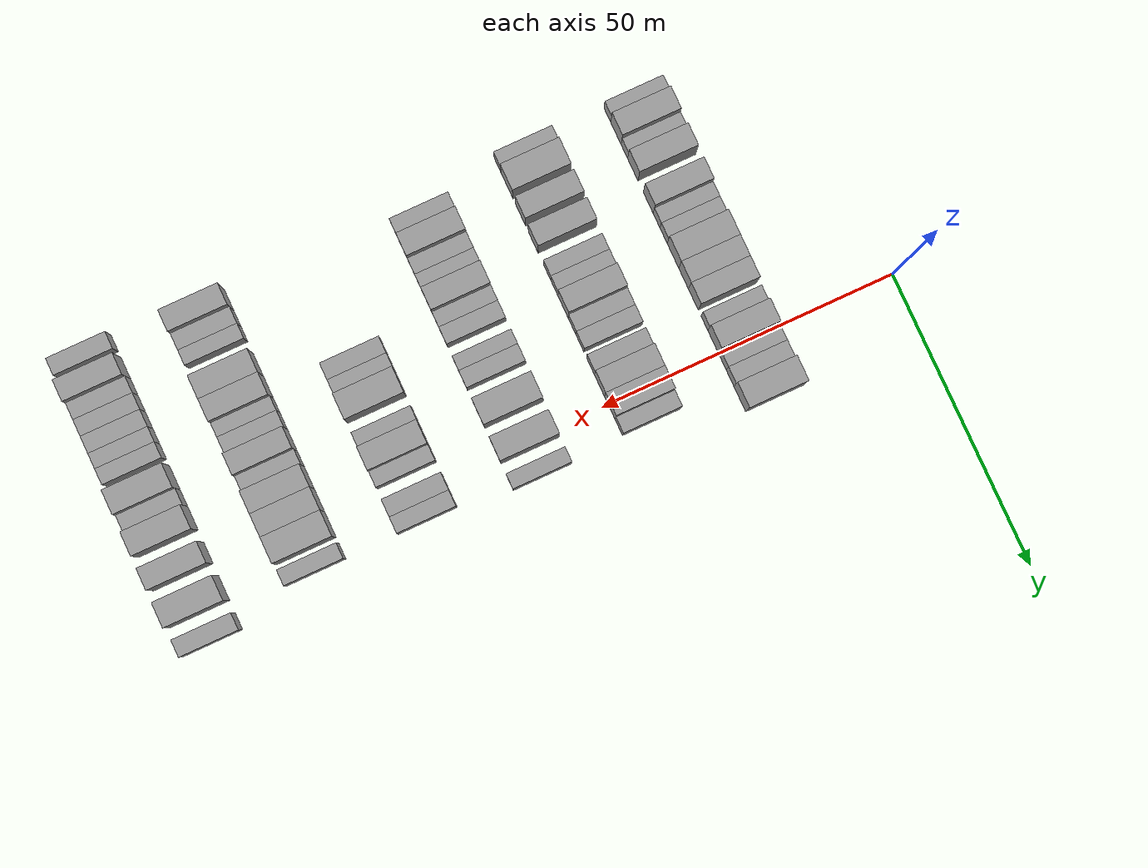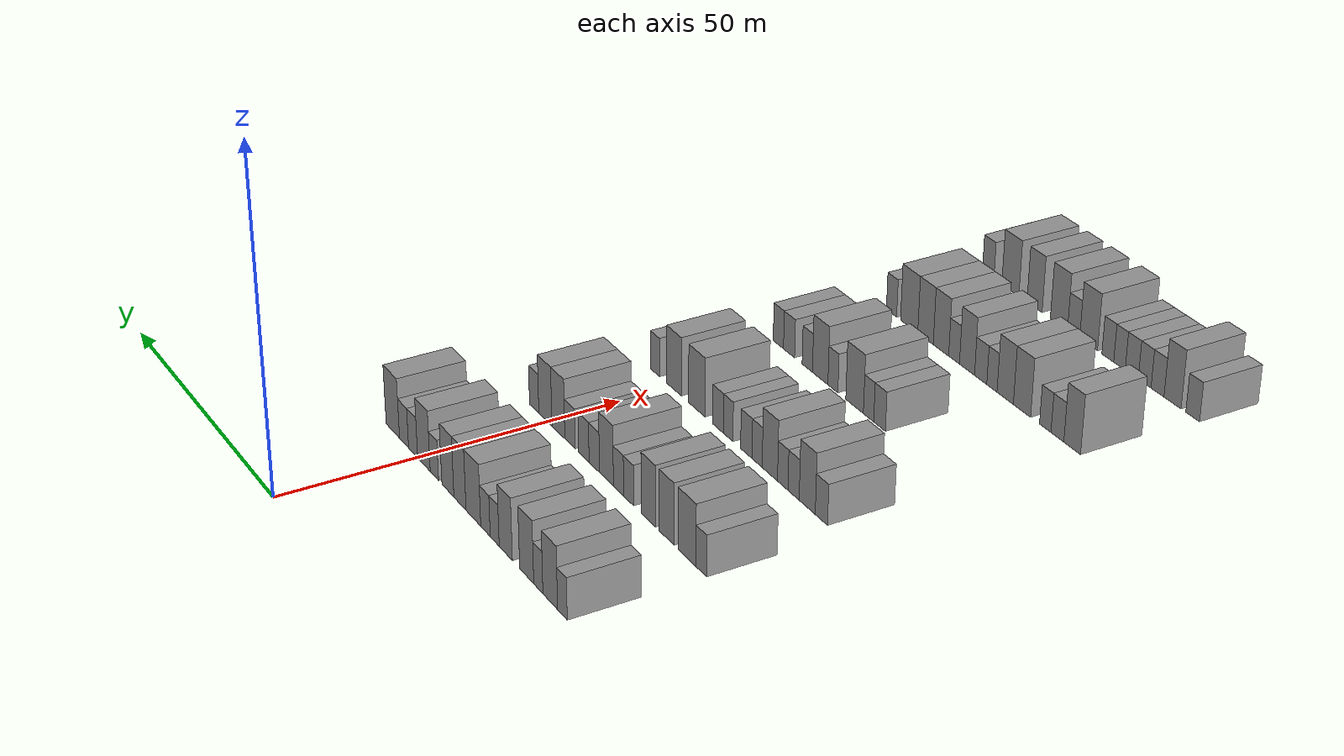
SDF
<sdf version="1.6">
 <world name="default">
  <model name="building_71">
   <static>1</static>
   <pose>25.0000 -41.4574 0 0.000000 0.000000 0.000000</pose>
   <link name="link">
    <pose>0 0 3.00 0 0 0</pose>
    <collision name="collision"><geometry><box><size>10.0000 2.5124 6.0000</size></box></geometry></collision>
    <visual name="visual">
     <cast_shadows>0</cast_shadows>
     <geometry><box><size>10.0000 2.5124 6.0000</size></box></geometry>
     <material>
      <script>
       <uri>model://grey_wall/materials/scripts</uri>
       <uri>model://grey_wall/materials/textures</uri>
       <name>vrc/grey_wall</name>
      </script>
     </material>
    </visual>
   </link>
  </model>
  <model name="building_72">
   <static>1</static>
   <pose>25.0000 -38.2625 0 0.000000 0.000000 0.000000</pose>
   <link name="link">
    <pose>0 0 4.50 0 0 0</pose>
    <collision name="collision"><geometry><box><size>10.0000 3.8774 9.0000</size></box></geometry></collision>
    <visual name="visual">
     <cast_shadows>0</cast_shadows>
     <geometry><box><size>10.0000 3.8774 9.0000</size></box></geometry>
     <material>
      <script>
       <uri>model://grey_wall/materials/scripts</uri>
       <uri>model://grey_wall/materials/textures</uri>
       <name>vrc/grey_wall</name>
      </script>
     </material>
    </visual>
   </link>
  </model>
  <model name="building_73">
   <static>1</static>
   <pose>25.0000 -35.0971 0 0.000000 0.000000 0.000000</pose>
   <link name="link">
    <pose>0 0 3.00 0 0 0</pose>
    <collision name="collision"><geometry><box><size>10.0000 2.4535 6.0000</size></box></geometry></collision>
    <visual name="visual">
     <cast_shadows>0</cast_shadows>
     <geometry><box><size>10.0000 2.4535 6.0000</size></box></geometry>
     <material>
      <script>
       <uri>model://grey_wall/materials/scripts</uri>
       <uri>model://grey_wall/materials/textures</uri>
       <name>vrc/grey_wall</name>
      </script>
     </material>
    </visual>
   </link>
  </model>
  <model name="building_74">
   <static>1</static>
   <pose>25.0000 -31.9582 0 0.000000 0.000000 0.000000</pose>
   <link name="link">
    <pose>0 0 4.50 0 0 0</pose>
    <collision name="collision"><geometry><box><size>10.0000 3.8245 9.0000</size></box></geometry></collision>
    <visual name="visual">
     <cast_shadows>0</cast_shadows>
     <geometry><box><size>10.0000 3.8245 9.0000</size></box></geometry>
     <material>
      <script>
       <uri>model://grey_wall/materials/scripts</uri>
       <uri>model://grey_wall/materials/textures</uri>
       <name>vrc/grey_wall</name>
      </script>
     </material>
    </visual>
   </link>
  </model>
  <model name="building_75">
   <static>1</static>
   <pose>25.0000 -26.1996 0 0.000000 0.000000 0.000000</pose>
   <link name="link">
    <pose>0 0 4.50 0 0 0</pose>
    <collision name="collision"><geometry><box><size>10.0000 3.6927 9.0000</size></box></geometry></collision>
    <visual name="visual">
     <cast_shadows>0</cast_shadows>
     <geometry><box><size>10.0000 3.6927 9.0000</size></box></geometry>
     <material>
      <script>
       <uri>model://grey_wall/materials/scripts</uri>
       <uri>model://grey_wall/materials/textures</uri>
       <name>vrc/grey_wall</name>
      </script>
     </material>
    </visual>
   </link>
  </model>
  <model name="building_76">
   <static>1</static>
   <pose>25.0000 -23.0851 0 0.000000 0.000000 0.000000</pose>
   <link name="link">
    <pose>0 0 3.00 0 0 0</pose>
    <collision name="collision"><geometry><box><size>10.0000 2.5362 6.0000</size></box></geometry></collision>
    <visual name="visual">
     <cast_shadows>0</cast_shadows>
     <geometry><box><size>10.0000 2.5362 6.0000</size></box></geometry>
     <material>
      <script>
       <uri>model://grey_wall/materials/scripts</uri>
       <uri>model://grey_wall/materials/textures</uri>
       <name>vrc/grey_wall</name>
      </script>
     </material>
    </visual>
   </link>
  </model>
  <model name="building_77">
   <static>1</static>
   <pose>25.0000 -20.4574 0 0.000000 0.000000 0.000000</pose>
   <link name="link">
    <pose>0 0 3.00 0 0 0</pose>
    <collision name="collision"><geometry><box><size>10.0000 2.7192 6.0000</size></box></geometry></collision>
    <visual name="visual">
     <cast_shadows>0</cast_shadows>
     <geometry><box><size>10.0000 2.7192 6.0000</size></box></geometry>
     <material>
      <script>
       <uri>model://grey_wall/materials/scripts</uri>
       <uri>model://grey_wall/materials/textures</uri>
       <name>vrc/grey_wall</name>
      </script>
     </material>
    </visual>
   </link>
  </model>
  <model name="building_78">
   <static>1</static>
   <pose>25.0000 -16.9598 0 0.000000 0.000000 0.000000</pose>
   <link name="link">
    <pose>0 0 4.50 0 0 0</pose>
    <collision name="collision"><geometry><box><size>10.0000 4.2761 9.0000</size></box></geometry></collision>
    <visual name="visual">
     <cast_shadows>0</cast_shadows>
     <geometry><box><size>10.0000 4.2761 9.0000</size></box></geometry>
     <material>
      <script>
       <uri>model://grey_wall/materials/scripts</uri>
       <uri>model://grey_wall/materials/textures</uri>
       <name>vrc/grey_wall</name>
      </script>
     </material>
    </visual>
   </link>
  </model>
  <model name="building_79">
   <static>1</static>
   <pose>25.0000 -13.0199 0 0.000000 0.000000 0.000000</pose>
   <link name="link">
    <pose>0 0 4.50 0 0 0</pose>
    <collision name="collision"><geometry><box><size>10.0000 3.6037 9.0000</size></box></geometry></collision>
    <visual name="visual">
     <cast_shadows>0</cast_shadows>
     <geometry><box><size>10.0000 3.6037 9.0000</size></box></geometry>
     <material>
      <script>
       <uri>model://grey_wall/materials/scripts</uri>
       <uri>model://grey_wall/materials/textures</uri>
       <name>vrc/grey_wall</name>
      </script>
     </material>
    </visual>
   </link>
  </model>
  <model name="building_80">
   <static>1</static>
   <pose>25.0000 -9.4075 0 0.000000 0.000000 0.000000</pose>
   <link name="link">
    <pose>0 0 4.50 0 0 0</pose>
    <collision name="collision"><geometry><box><size>10.0000 3.6210 9.0000</size></box></geometry></collision>
    <visual name="visual">
     <cast_shadows>0</cast_shadows>
     <geometry><box><size>10.0000 3.6210 9.0000</size></box></geometry>
     <material>
      <script>
       <uri>model://grey_wall/materials/scripts</uri>
       <uri>model://grey_wall/materials/textures</uri>
       <name>vrc/grey_wall</name>
      </script>
     </material>
    </visual>
   </link>
  </model>
  <model name="building_81">
   <static>1</static>
   <pose>25.0000 -5.3131 0 0.000000 0.000000 0.000000</pose>
   <link name="link">
    <pose>0 0 3.00 0 0 0</pose>
    <collision name="collision"><geometry><box><size>10.0000 2.5679 6.0000</size></box></geometry></collision>
    <visual name="visual">
     <cast_shadows>0</cast_shadows>
     <geometry><box><size>10.0000 2.5679 6.0000</size></box></geometry>
     <material>
      <script>
       <uri>model://grey_wall/materials/scripts</uri>
       <uri>model://grey_wall/materials/textures</uri>
       <name>vrc/grey_wall</name>
      </script>
     </material>
    </visual>
   </link>
  </model>
  <model name="building_82">
   <static>1</static>
   <pose>25.0000 -2.0773 0 0.000000 0.000000 0.000000</pose>
   <link name="link">
    <pose>0 0 4.50 0 0 0</pose>
    <collision name="collision"><geometry><box><size>10.0000 3.9038 9.0000</size></box></geometry></collision>
    <visual name="visual">
     <cast_shadows>0</cast_shadows>
     <geometry><box><size>10.0000 3.9038 9.0000</size></box></geometry>
     <material>
      <script>
       <uri>model://grey_wall/materials/scripts</uri>
       <uri>model://grey_wall/materials/textures</uri>
       <name>vrc/grey_wall</name>
      </script>
     </material>
    </visual>
   </link>
  </model>
  <model name="building_83">
   <static>1</static>
   <pose>25.0000 1.3079 0 0.000000 0.000000 0.000000</pose>
   <link name="link">
    <pose>0 0 3.00 0 0 0</pose>
    <collision name="collision"><geometry><box><size>10.0000 2.8666 6.0000</size></box></geometry></collision>
    <visual name="visual">
     <cast_shadows>0</cast_shadows>
     <geometry><box><size>10.0000 2.8666 6.0000</size></box></geometry>
     <material>
      <script>
       <uri>model://grey_wall/materials/scripts</uri>
       <uri>model://grey_wall/materials/textures</uri>
       <name>vrc/grey_wall</name>
      </script>
     </material>
    </visual>
   </link>
  </model>
  <model name="building_84">
   <static>1</static>
   <pose>25.0000 4.1824 0 0.000000 0.000000 0.000000</pose>
   <link name="link">
    <pose>0 0 3.00 0 0 0</pose>
    <collision name="collision"><geometry><box><size>10.0000 2.8824 6.0000</size></box></geometry></collision>
    <visual name="visual">
     <cast_shadows>0</cast_shadows>
     <geometry><box><size>10.0000 2.8824 6.0000</size></box></geometry>
     <material>
      <script>
       <uri>model://grey_wall/materials/scripts</uri>
       <uri>model://grey_wall/materials/textures</uri>
       <name>vrc/grey_wall</name>
      </script>
     </material>
    </visual>
   </link>
  </model>
  <model name="building_85">
   <static>1</static>
   <pose>25.0000 7.7852 0 0.000000 0.000000 0.000000</pose>
   <link name="link">
    <pose>0 0 4.50 0 0 0</pose>
    <collision name="collision"><geometry><box><size>10.0000 4.3231 9.0000</size></box></geometry></collision>
    <visual name="visual">
     <cast_shadows>0</cast_shadows>
     <geometry><box><size>10.0000 4.3231 9.0000</size></box></geometry>
     <material>
      <script>
       <uri>model://grey_wall/materials/scripts</uri>
       <uri>model://grey_wall/materials/textures</uri>
       <name>vrc/grey_wall</name>
      </script>
     </material>
    </visual>
   </link>
  </model>
  <model name="building_257">
   <static>1</static>
   <pose>44.0000 -41.4314 0 0.000000 0.000000 0.000000</pose>
   <link name="link">
    <pose>0 0 3.00 0 0 0</pose>
    <collision name="collision"><geometry><box><size>10.0000 2.6010 6.0000</size></box></geometry></collision>
    <visual name="visual">
     <cast_shadows>0</cast_shadows>
     <geometry><box><size>10.0000 2.6010 6.0000</size></box></geometry>
     <material>
      <script>
       <uri>model://grey_wall/materials/scripts</uri>
       <uri>model://grey_wall/materials/textures</uri>
       <name>vrc/grey_wall</name>
      </script>
     </material>
    </visual>
   </link>
  </model>
  <model name="building_258">
   <static>1</static>
   <pose>44.0000 -37.8841 0 0.000000 0.000000 0.000000</pose>
   <link name="link">
    <pose>0 0 4.50 0 0 0</pose>
    <collision name="collision"><geometry><box><size>10.0000 4.4934 9.0000</size></box></geometry></collision>
    <visual name="visual">
     <cast_shadows>0</cast_shadows>
     <geometry><box><size>10.0000 4.4934 9.0000</size></box></geometry>
     <material>
      <script>
       <uri>model://grey_wall/materials/scripts</uri>
       <uri>model://grey_wall/materials/textures</uri>
       <name>vrc/grey_wall</name>
      </script>
     </material>
    </visual>
   </link>
  </model>
  <model name="building_259">
   <static>1</static>
   <pose>44.0000 -32.7535 0 0.000000 0.000000 0.000000</pose>
   <link name="link">
    <pose>0 0 4.50 0 0 0</pose>
    <collision name="collision"><geometry><box><size>10.0000 3.7679 9.0000</size></box></geometry></collision>
    <visual name="visual">
     <cast_shadows>0</cast_shadows>
     <geometry><box><size>10.0000 3.7679 9.0000</size></box></geometry>
     <material>
      <script>
       <uri>model://grey_wall/materials/scripts</uri>
       <uri>model://grey_wall/materials/textures</uri>
       <name>vrc/grey_wall</name>
      </script>
     </material>
    </visual>
   </link>
  </model>
  <model name="building_260">
   <static>1</static>
   <pose>44.0000 -28.0160 0 0.000000 0.000000 0.000000</pose>
   <link name="link">
    <pose>0 0 4.50 0 0 0</pose>
    <collision name="collision"><geometry><box><size>10.0000 3.7071 9.0000</size></box></geometry></collision>
    <visual name="visual">
     <cast_shadows>0</cast_shadows>
     <geometry><box><size>10.0000 3.7071 9.0000</size></box></geometry>
     <material>
      <script>
       <uri>model://grey_wall/materials/scripts</uri>
       <uri>model://grey_wall/materials/textures</uri>
       <name>vrc/grey_wall</name>
      </script>
     </material>
    </visual>
   </link>
  </model>
  <model name="building_261">
   <static>1</static>
   <pose>44.0000 -22.8151 0 0.000000 0.000000 0.000000</pose>
   <link name="link">
    <pose>0 0 3.00 0 0 0</pose>
    <collision name="collision"><geometry><box><size>10.0000 2.6948 6.0000</size></box></geometry></collision>
    <visual name="visual">
     <cast_shadows>0</cast_shadows>
     <geometry><box><size>10.0000 2.6948 6.0000</size></box></geometry>
     <material>
      <script>
       <uri>model://grey_wall/materials/scripts</uri>
       <uri>model://grey_wall/materials/textures</uri>
       <name>vrc/grey_wall</name>
      </script>
     </material>
    </visual>
   </link>
  </model>
  <model name="building_262">
   <static>1</static>
   <pose>44.0000 -20.0927 0 0.000000 0.000000 0.000000</pose>
   <link name="link">
    <pose>0 0 3.00 0 0 0</pose>
    <collision name="collision"><geometry><box><size>10.0000 2.7499 6.0000</size></box></geometry></collision>
    <visual name="visual">
     <cast_shadows>0</cast_shadows>
     <geometry><box><size>10.0000 2.7499 6.0000</size></box></geometry>
     <material>
      <script>
       <uri>model://grey_wall/materials/scripts</uri>
       <uri>model://grey_wall/materials/textures</uri>
       <name>vrc/grey_wall</name>
      </script>
     </material>
    </visual>
   </link>
  </model>
  <model name="building_263">
   <static>1</static>
   <pose>44.0000 -16.7990 0 0.000000 0.000000 0.000000</pose>
   <link name="link">
    <pose>0 0 4.50 0 0 0</pose>
    <collision name="collision"><geometry><box><size>10.0000 3.8375 9.0000</size></box></geometry></collision>
    <visual name="visual">
     <cast_shadows>0</cast_shadows>
     <geometry><box><size>10.0000 3.8375 9.0000</size></box></geometry>
     <material>
      <script>
       <uri>model://grey_wall/materials/scripts</uri>
       <uri>model://grey_wall/materials/textures</uri>
       <name>vrc/grey_wall</name>
      </script>
     </material>
    </visual>
   </link>
  </model>
  <model name="building_264">
   <static>1</static>
   <pose>44.0000 -13.4365 0 0.000000 0.000000 0.000000</pose>
   <link name="link">
    <pose>0 0 3.00 0 0 0</pose>
    <collision name="collision"><geometry><box><size>10.0000 2.8874 6.0000</size></box></geometry></collision>
    <visual name="visual">
     <cast_shadows>0</cast_shadows>
     <geometry><box><size>10.0000 2.8874 6.0000</size></box></geometry>
     <material>
      <script>
       <uri>model://grey_wall/materials/scripts</uri>
       <uri>model://grey_wall/materials/textures</uri>
       <name>vrc/grey_wall</name>
      </script>
     </material>
    </visual>
   </link>
  </model>
  <model name="building_265">
   <static>1</static>
   <pose>44.0000 -10.5297 0 0.000000 0.000000 0.000000</pose>
   <link name="link">
    <pose>0 0 3.00 0 0 0</pose>
    <collision name="collision"><geometry><box><size>10.0000 2.9261 6.0000</size></box></geometry></collision>
    <visual name="visual">
     <cast_shadows>0</cast_shadows>
     <geometry><box><size>10.0000 2.9261 6.0000</size></box></geometry>
     <material>
      <script>
       <uri>model://grey_wall/materials/scripts</uri>
       <uri>model://grey_wall/materials/textures</uri>
       <name>vrc/grey_wall</name>
      </script>
     </material>
    </visual>
   </link>
  </model>
  <model name="building_266">
   <static>1</static>
   <pose>44.0000 -6.5814 0 0.000000 0.000000 0.000000</pose>
   <link name="link">
    <pose>0 0 3.00 0 0 0</pose>
    <collision name="collision"><geometry><box><size>10.0000 2.9705 6.0000</size></box></geometry></collision>
    <visual name="visual">
     <cast_shadows>0</cast_shadows>
     <geometry><box><size>10.0000 2.9705 6.0000</size></box></geometry>
     <material>
      <script>
       <uri>model://grey_wall/materials/scripts</uri>
       <uri>model://grey_wall/materials/textures</uri>
       <name>vrc/grey_wall</name>
      </script>
     </material>
    </visual>
   </link>
  </model>
  <model name="building_267">
   <static>1</static>
   <pose>44.0000 -3.2239 0 0.000000 0.000000 0.000000</pose>
   <link name="link">
    <pose>0 0 4.50 0 0 0</pose>
    <collision name="collision"><geometry><box><size>10.0000 3.7447 9.0000</size></box></geometry></collision>
    <visual name="visual">
     <cast_shadows>0</cast_shadows>
     <geometry><box><size>10.0000 3.7447 9.0000</size></box></geometry>
     <material>
      <script>
       <uri>model://grey_wall/materials/scripts</uri>
       <uri>model://grey_wall/materials/textures</uri>
       <name>vrc/grey_wall</name>
      </script>
     </material>
    </visual>
   </link>
  </model>
  <model name="building_268">
   <static>1</static>
   <pose>44.0000 0.5912 0 0.000000 0.000000 0.000000</pose>
   <link name="link">
    <pose>0 0 4.50 0 0 0</pose>
    <collision name="collision"><geometry><box><size>10.0000 3.8855 9.0000</size></box></geometry></collision>
    <visual name="visual">
     <cast_shadows>0</cast_shadows>
     <geometry><box><size>10.0000 3.8855 9.0000</size></box></geometry>
     <material>
      <script>
       <uri>model://grey_wall/materials/scripts</uri>
       <uri>model://grey_wall/materials/textures</uri>
       <name>vrc/grey_wall</name>
      </script>
     </material>
    </visual>
   </link>
  </model>
  <model name="building_269">
   <static>1</static>
   <pose>44.0000 3.9182 0 0.000000 0.000000 0.000000</pose>
   <link name="link">
    <pose>0 0 3.00 0 0 0</pose>
    <collision name="collision"><geometry><box><size>10.0000 2.7685 6.0000</size></box></geometry></collision>
    <visual name="visual">
     <cast_shadows>0</cast_shadows>
     <geometry><box><size>10.0000 2.7685 6.0000</size></box></geometry>
     <material>
      <script>
       <uri>model://grey_wall/materials/scripts</uri>
       <uri>model://grey_wall/materials/textures</uri>
       <name>vrc/grey_wall</name>
      </script>
     </material>
    </visual>
   </link>
  </model>
  <model name="building_419">
   <static>1</static>
   <pose>63.0000 -38.5469 0 0.000000 0.000000 0.000000</pose>
   <link name="link">
    <pose>0 0 3.00 0 0 0</pose>
    <collision name="collision"><geometry><box><size>10.0000 2.9183 6.0000</size></box></geometry></collision>
    <visual name="visual">
     <cast_shadows>0</cast_shadows>
     <geometry><box><size>10.0000 2.9183 6.0000</size></box></geometry>
     <material>
      <script>
       <uri>model://grey_wall/materials/scripts</uri>
       <uri>model://grey_wall/materials/textures</uri>
       <name>vrc/grey_wall</name>
      </script>
     </material>
    </visual>
   </link>
  </model>
  <model name="building_420">
   <static>1</static>
   <pose>63.0000 -35.1521 0 0.000000 0.000000 0.000000</pose>
   <link name="link">
    <pose>0 0 4.50 0 0 0</pose>
    <collision name="collision"><geometry><box><size>10.0000 3.8712 9.0000</size></box></geometry></collision>
    <visual name="visual">
     <cast_shadows>0</cast_shadows>
     <geometry><box><size>10.0000 3.8712 9.0000</size></box></geometry>
     <material>
      <script>
       <uri>model://grey_wall/materials/scripts</uri>
       <uri>model://grey_wall/materials/textures</uri>
       <name>vrc/grey_wall</name>
      </script>
     </material>
    </visual>
   </link>
  </model>
  <model name="building_421">
   <static>1</static>
   <pose>63.0000 -31.8410 0 0.000000 0.000000 0.000000</pose>
   <link name="link">
    <pose>0 0 3.00 0 0 0</pose>
    <collision name="collision"><geometry><box><size>10.0000 2.7508 6.0000</size></box></geometry></collision>
    <visual name="visual">
     <cast_shadows>0</cast_shadows>
     <geometry><box><size>10.0000 2.7508 6.0000</size></box></geometry>
     <material>
      <script>
       <uri>model://grey_wall/materials/scripts</uri>
       <uri>model://grey_wall/materials/textures</uri>
       <name>vrc/grey_wall</name>
      </script>
     </material>
    </visual>
   </link>
  </model>
  <model name="building_422">
   <static>1</static>
   <pose>63.0000 -29.1780 0 0.000000 0.000000 0.000000</pose>
   <link name="link">
    <pose>0 0 3.00 0 0 0</pose>
    <collision name="collision"><geometry><box><size>10.0000 2.5753 6.0000</size></box></geometry></collision>
    <visual name="visual">
     <cast_shadows>0</cast_shadows>
     <geometry><box><size>10.0000 2.5753 6.0000</size></box></geometry>
     <material>
      <script>
       <uri>model://grey_wall/materials/scripts</uri>
       <uri>model://grey_wall/materials/textures</uri>
       <name>vrc/grey_wall</name>
      </script>
     </material>
    </visual>
   </link>
  </model>
  <model name="building_423">
   <static>1</static>
   <pose>63.0000 -25.9721 0 0.000000 0.000000 0.000000</pose>
   <link name="link">
    <pose>0 0 4.50 0 0 0</pose>
    <collision name="collision"><geometry><box><size>10.0000 3.8364 9.0000</size></box></geometry></collision>
    <visual name="visual">
     <cast_shadows>0</cast_shadows>
     <geometry><box><size>10.0000 3.8364 9.0000</size></box></geometry>
     <material>
      <script>
       <uri>model://grey_wall/materials/scripts</uri>
       <uri>model://grey_wall/materials/textures</uri>
       <name>vrc/grey_wall</name>
      </script>
     </material>
    </visual>
   </link>
  </model>
  <model name="building_424">
   <static>1</static>
   <pose>63.0000 -22.7603 0 0.000000 0.000000 0.000000</pose>
   <link name="link">
    <pose>0 0 3.00 0 0 0</pose>
    <collision name="collision"><geometry><box><size>10.0000 2.5872 6.0000</size></box></geometry></collision>
    <visual name="visual">
     <cast_shadows>0</cast_shadows>
     <geometry><box><size>10.0000 2.5872 6.0000</size></box></geometry>
     <material>
      <script>
       <uri>model://grey_wall/materials/scripts</uri>
       <uri>model://grey_wall/materials/textures</uri>
       <name>vrc/grey_wall</name>
      </script>
     </material>
    </visual>
   </link>
  </model>
  <model name="building_425">
   <static>1</static>
   <pose>63.0000 -20.0028 0 0.000000 0.000000 0.000000</pose>
   <link name="link">
    <pose>0 0 3.00 0 0 0</pose>
    <collision name="collision"><geometry><box><size>10.0000 2.9279 6.0000</size></box></geometry></collision>
    <visual name="visual">
     <cast_shadows>0</cast_shadows>
     <geometry><box><size>10.0000 2.9279 6.0000</size></box></geometry>
     <material>
      <script>
       <uri>model://grey_wall/materials/scripts</uri>
       <uri>model://grey_wall/materials/textures</uri>
       <name>vrc/grey_wall</name>
      </script>
     </material>
    </visual>
   </link>
  </model>
  <model name="building_426">
   <static>1</static>
   <pose>63.0000 -15.3031 0 0.000000 0.000000 0.000000</pose>
   <link name="link">
    <pose>0 0 3.00 0 0 0</pose>
    <collision name="collision"><geometry><box><size>10.0000 2.4716 6.0000</size></box></geometry></collision>
    <visual name="visual">
     <cast_shadows>0</cast_shadows>
     <geometry><box><size>10.0000 2.4716 6.0000</size></box></geometry>
     <material>
      <script>
       <uri>model://grey_wall/materials/scripts</uri>
       <uri>model://grey_wall/materials/textures</uri>
       <name>vrc/grey_wall</name>
      </script>
     </material>
    </visual>
   </link>
  </model>
  <model name="building_427">
   <static>1</static>
   <pose>63.0000 -12.6085 0 0.000000 0.000000 0.000000</pose>
   <link name="link">
    <pose>0 0 3.00 0 0 0</pose>
    <collision name="collision"><geometry><box><size>10.0000 2.9175 6.0000</size></box></geometry></collision>
    <visual name="visual">
     <cast_shadows>0</cast_shadows>
     <geometry><box><size>10.0000 2.9175 6.0000</size></box></geometry>
     <material>
      <script>
       <uri>model://grey_wall/materials/scripts</uri>
       <uri>model://grey_wall/materials/textures</uri>
       <name>vrc/grey_wall</name>
      </script>
     </material>
    </visual>
   </link>
  </model>
  <model name="building_428">
   <static>1</static>
   <pose>63.0000 -6.9125 0 0.000000 0.000000 0.000000</pose>
   <link name="link">
    <pose>0 0 4.50 0 0 0</pose>
    <collision name="collision"><geometry><box><size>10.0000 4.4746 9.0000</size></box></geometry></collision>
    <visual name="visual">
     <cast_shadows>0</cast_shadows>
     <geometry><box><size>10.0000 4.4746 9.0000</size></box></geometry>
     <material>
      <script>
       <uri>model://grey_wall/materials/scripts</uri>
       <uri>model://grey_wall/materials/textures</uri>
       <name>vrc/grey_wall</name>
      </script>
     </material>
    </visual>
   </link>
  </model>
  <model name="building_429">
   <static>1</static>
   <pose>63.0000 -0.6356 0 0.000000 0.000000 0.000000</pose>
   <link name="link">
    <pose>0 0 4.50 0 0 0</pose>
    <collision name="collision"><geometry><box><size>10.0000 4.0791 9.0000</size></box></geometry></collision>
    <visual name="visual">
     <cast_shadows>0</cast_shadows>
     <geometry><box><size>10.0000 4.0791 9.0000</size></box></geometry>
     <material>
      <script>
       <uri>model://grey_wall/materials/scripts</uri>
       <uri>model://grey_wall/materials/textures</uri>
       <name>vrc/grey_wall</name>
      </script>
     </material>
    </visual>
   </link>
  </model>
  <model name="building_430">
   <static>1</static>
   <pose>63.0000 4.6970 0 0.000000 0.000000 0.000000</pose>
   <link name="link">
    <pose>0 0 3.00 0 0 0</pose>
    <collision name="collision"><geometry><box><size>10.0000 2.5862 6.0000</size></box></geometry></collision>
    <visual name="visual">
     <cast_shadows>0</cast_shadows>
     <geometry><box><size>10.0000 2.5862 6.0000</size></box></geometry>
     <material>
      <script>
       <uri>model://grey_wall/materials/scripts</uri>
       <uri>model://grey_wall/materials/textures</uri>
       <name>vrc/grey_wall</name>
      </script>
     </material>
    </visual>
   </link>
  </model>
  <model name="building_602">
   <static>1</static>
   <pose>82.0000 -22.6503 0 0.000000 0.000000 0.000000</pose>
   <link name="link">
    <pose>0 0 3.00 0 0 0</pose>
    <collision name="collision"><geometry><box><size>10.0000 2.8470 6.0000</size></box></geometry></collision>
    <visual name="visual">
     <cast_shadows>0</cast_shadows>
     <geometry><box><size>10.0000 2.8470 6.0000</size></box></geometry>
     <material>
      <script>
       <uri>model://grey_wall/materials/scripts</uri>
       <uri>model://grey_wall/materials/textures</uri>
       <name>vrc/grey_wall</name>
      </script>
     </material>
    </visual>
   </link>
  </model>
  <model name="building_603">
   <static>1</static>
   <pose>82.0000 -19.9521 0 0.000000 0.000000 0.000000</pose>
   <link name="link">
    <pose>0 0 3.00 0 0 0</pose>
    <collision name="collision"><geometry><box><size>10.0000 2.5494 6.0000</size></box></geometry></collision>
    <visual name="visual">
     <cast_shadows>0</cast_shadows>
     <geometry><box><size>10.0000 2.5494 6.0000</size></box></geometry>
     <material>
      <script>
       <uri>model://grey_wall/materials/scripts</uri>
       <uri>model://grey_wall/materials/textures</uri>
       <name>vrc/grey_wall</name>
      </script>
     </material>
    </visual>
   </link>
  </model>
  <model name="building_604">
   <static>1</static>
   <pose>82.0000 -16.4802 0 0.000000 0.000000 0.000000</pose>
   <link name="link">
    <pose>0 0 4.50 0 0 0</pose>
    <collision name="collision"><geometry><box><size>10.0000 4.3944 9.0000</size></box></geometry></collision>
    <visual name="visual">
     <cast_shadows>0</cast_shadows>
     <geometry><box><size>10.0000 4.3944 9.0000</size></box></geometry>
     <material>
      <script>
       <uri>model://grey_wall/materials/scripts</uri>
       <uri>model://grey_wall/materials/textures</uri>
       <name>vrc/grey_wall</name>
      </script>
     </material>
    </visual>
   </link>
  </model>
  <model name="building_605">
   <static>1</static>
   <pose>82.0000 -11.0034 0 0.000000 0.000000 0.000000</pose>
   <link name="link">
    <pose>0 0 3.00 0 0 0</pose>
    <collision name="collision"><geometry><box><size>10.0000 2.5592 6.0000</size></box></geometry></collision>
    <visual name="visual">
     <cast_shadows>0</cast_shadows>
     <geometry><box><size>10.0000 2.5592 6.0000</size></box></geometry>
     <material>
      <script>
       <uri>model://grey_wall/materials/scripts</uri>
       <uri>model://grey_wall/materials/textures</uri>
       <name>vrc/grey_wall</name>
      </script>
     </material>
    </visual>
   </link>
  </model>
  <model name="building_606">
   <static>1</static>
   <pose>82.0000 -7.7176 0 0.000000 0.000000 0.000000</pose>
   <link name="link">
    <pose>0 0 4.50 0 0 0</pose>
    <collision name="collision"><geometry><box><size>10.0000 4.0124 9.0000</size></box></geometry></collision>
    <visual name="visual">
     <cast_shadows>0</cast_shadows>
     <geometry><box><size>10.0000 4.0124 9.0000</size></box></geometry>
     <material>
      <script>
       <uri>model://grey_wall/materials/scripts</uri>
       <uri>model://grey_wall/materials/textures</uri>
       <name>vrc/grey_wall</name>
      </script>
     </material>
    </visual>
   </link>
  </model>
  <model name="building_607">
   <static>1</static>
   <pose>82.0000 -4.3612 0 0.000000 0.000000 0.000000</pose>
   <link name="link">
    <pose>0 0 3.00 0 0 0</pose>
    <collision name="collision"><geometry><box><size>10.0000 2.7005 6.0000</size></box></geometry></collision>
    <visual name="visual">
     <cast_shadows>0</cast_shadows>
     <geometry><box><size>10.0000 2.7005 6.0000</size></box></geometry>
     <material>
      <script>
       <uri>model://grey_wall/materials/scripts</uri>
       <uri>model://grey_wall/materials/textures</uri>
       <name>vrc/grey_wall</name>
      </script>
     </material>
    </visual>
   </link>
  </model>
  <model name="building_608">
   <static>1</static>
   <pose>82.0000 0.4770 0 0.000000 0.000000 0.000000</pose>
   <link name="link">
    <pose>0 0 3.00 0 0 0</pose>
    <collision name="collision"><geometry><box><size>10.0000 2.9759 6.0000</size></box></geometry></collision>
    <visual name="visual">
     <cast_shadows>0</cast_shadows>
     <geometry><box><size>10.0000 2.9759 6.0000</size></box></geometry>
     <material>
      <script>
       <uri>model://grey_wall/materials/scripts</uri>
       <uri>model://grey_wall/materials/textures</uri>
       <name>vrc/grey_wall</name>
      </script>
     </material>
    </visual>
   </link>
  </model>
  <model name="building_609">
   <static>1</static>
   <pose>82.0000 3.3481 0 0.000000 0.000000 0.000000</pose>
   <link name="link">
    <pose>0 0 3.00 0 0 0</pose>
    <collision name="collision"><geometry><box><size>10.0000 2.7662 6.0000</size></box></geometry></collision>
    <visual name="visual">
     <cast_shadows>0</cast_shadows>
     <geometry><box><size>10.0000 2.7662 6.0000</size></box></geometry>
     <material>
      <script>
       <uri>model://grey_wall/materials/scripts</uri>
       <uri>model://grey_wall/materials/textures</uri>
       <name>vrc/grey_wall</name>
      </script>
     </material>
    </visual>
   </link>
  </model>
  <model name="building_774">
   <static>1</static>
   <pose>101.0000 -39.6817 0 0.000000 0.000000 0.000000</pose>
   <link name="link">
    <pose>0 0 4.50 0 0 0</pose>
    <collision name="collision"><geometry><box><size>10.0000 3.6603 9.0000</size></box></geometry></collision>
    <visual name="visual">
     <cast_shadows>0</cast_shadows>
     <geometry><box><size>10.0000 3.6603 9.0000</size></box></geometry>
     <material>
      <script>
       <uri>model://grey_wall/materials/scripts</uri>
       <uri>model://grey_wall/materials/textures</uri>
       <name>vrc/grey_wall</name>
      </script>
     </material>
    </visual>
   </link>
  </model>
  <model name="building_775">
   <static>1</static>
   <pose>101.0000 -36.4276 0 0.000000 0.000000 0.000000</pose>
   <link name="link">
    <pose>0 0 3.00 0 0 0</pose>
    <collision name="collision"><geometry><box><size>10.0000 2.8479 6.0000</size></box></geometry></collision>
    <visual name="visual">
     <cast_shadows>0</cast_shadows>
     <geometry><box><size>10.0000 2.8479 6.0000</size></box></geometry>
     <material>
      <script>
       <uri>model://grey_wall/materials/scripts</uri>
       <uri>model://grey_wall/materials/textures</uri>
       <name>vrc/grey_wall</name>
      </script>
     </material>
    </visual>
   </link>
  </model>
  <model name="building_776">
   <static>1</static>
   <pose>101.0000 -33.7179 0 0.000000 0.000000 0.000000</pose>
   <link name="link">
    <pose>0 0 3.00 0 0 0</pose>
    <collision name="collision"><geometry><box><size>10.0000 2.5715 6.0000</size></box></geometry></collision>
    <visual name="visual">
     <cast_shadows>0</cast_shadows>
     <geometry><box><size>10.0000 2.5715 6.0000</size></box></geometry>
     <material>
      <script>
       <uri>model://grey_wall/materials/scripts</uri>
       <uri>model://grey_wall/materials/textures</uri>
       <name>vrc/grey_wall</name>
      </script>
     </material>
    </visual>
   </link>
  </model>
  <model name="building_777">
   <static>1</static>
   <pose>101.0000 -28.4471 0 0.000000 0.000000 0.000000</pose>
   <link name="link">
    <pose>0 0 4.50 0 0 0</pose>
    <collision name="collision"><geometry><box><size>10.0000 3.9701 9.0000</size></box></geometry></collision>
    <visual name="visual">
     <cast_shadows>0</cast_shadows>
     <geometry><box><size>10.0000 3.9701 9.0000</size></box></geometry>
     <material>
      <script>
       <uri>model://grey_wall/materials/scripts</uri>
       <uri>model://grey_wall/materials/textures</uri>
       <name>vrc/grey_wall</name>
      </script>
     </material>
    </visual>
   </link>
  </model>
  <model name="building_778">
   <static>1</static>
   <pose>101.0000 -24.5600 0 0.000000 0.000000 0.000000</pose>
   <link name="link">
    <pose>0 0 4.50 0 0 0</pose>
    <collision name="collision"><geometry><box><size>10.0000 3.8041 9.0000</size></box></geometry></collision>
    <visual name="visual">
     <cast_shadows>0</cast_shadows>
     <geometry><box><size>10.0000 3.8041 9.0000</size></box></geometry>
     <material>
      <script>
       <uri>model://grey_wall/materials/scripts</uri>
       <uri>model://grey_wall/materials/textures</uri>
       <name>vrc/grey_wall</name>
      </script>
     </material>
    </visual>
   </link>
  </model>
  <model name="building_779">
   <static>1</static>
   <pose>101.0000 -21.4479 0 0.000000 0.000000 0.000000</pose>
   <link name="link">
    <pose>0 0 3.00 0 0 0</pose>
    <collision name="collision"><geometry><box><size>10.0000 2.4201 6.0000</size></box></geometry></collision>
    <visual name="visual">
     <cast_shadows>0</cast_shadows>
     <geometry><box><size>10.0000 2.4201 6.0000</size></box></geometry>
     <material>
      <script>
       <uri>model://grey_wall/materials/scripts</uri>
       <uri>model://grey_wall/materials/textures</uri>
       <name>vrc/grey_wall</name>
      </script>
     </material>
    </visual>
   </link>
  </model>
  <model name="building_780">
   <static>1</static>
   <pose>101.0000 -18.7777 0 0.000000 0.000000 0.000000</pose>
   <link name="link">
    <pose>0 0 3.00 0 0 0</pose>
    <collision name="collision"><geometry><box><size>10.0000 2.9202 6.0000</size></box></geometry></collision>
    <visual name="visual">
     <cast_shadows>0</cast_shadows>
     <geometry><box><size>10.0000 2.9202 6.0000</size></box></geometry>
     <material>
      <script>
       <uri>model://grey_wall/materials/scripts</uri>
       <uri>model://grey_wall/materials/textures</uri>
       <name>vrc/grey_wall</name>
      </script>
     </material>
    </visual>
   </link>
  </model>
  <model name="building_781">
   <static>1</static>
   <pose>101.0000 -15.4907 0 0.000000 0.000000 0.000000</pose>
   <link name="link">
    <pose>0 0 4.50 0 0 0</pose>
    <collision name="collision"><geometry><box><size>10.0000 3.6539 9.0000</size></box></geometry></collision>
    <visual name="visual">
     <cast_shadows>0</cast_shadows>
     <geometry><box><size>10.0000 3.6539 9.0000</size></box></geometry>
     <material>
      <script>
       <uri>model://grey_wall/materials/scripts</uri>
       <uri>model://grey_wall/materials/textures</uri>
       <name>vrc/grey_wall</name>
      </script>
     </material>
    </visual>
   </link>
  </model>
  <model name="building_782">
   <static>1</static>
   <pose>101.0000 -12.3449 0 0.000000 0.000000 0.000000</pose>
   <link name="link">
    <pose>0 0 3.00 0 0 0</pose>
    <collision name="collision"><geometry><box><size>10.0000 2.6376 6.0000</size></box></geometry></collision>
    <visual name="visual">
     <cast_shadows>0</cast_shadows>
     <geometry><box><size>10.0000 2.6376 6.0000</size></box></geometry>
     <material>
      <script>
       <uri>model://grey_wall/materials/scripts</uri>
       <uri>model://grey_wall/materials/textures</uri>
       <name>vrc/grey_wall</name>
      </script>
     </material>
    </visual>
   </link>
  </model>
  <model name="building_783">
   <static>1</static>
   <pose>101.0000 -9.1117 0 0.000000 0.000000 0.000000</pose>
   <link name="link">
    <pose>0 0 4.50 0 0 0</pose>
    <collision name="collision"><geometry><box><size>10.0000 3.8289 9.0000</size></box></geometry></collision>
    <visual name="visual">
     <cast_shadows>0</cast_shadows>
     <geometry><box><size>10.0000 3.8289 9.0000</size></box></geometry>
     <material>
      <script>
       <uri>model://grey_wall/materials/scripts</uri>
       <uri>model://grey_wall/materials/textures</uri>
       <name>vrc/grey_wall</name>
      </script>
     </material>
    </visual>
   </link>
  </model>
  <model name="building_784">
   <static>1</static>
   <pose>101.0000 -5.2465 0 0.000000 0.000000 0.000000</pose>
   <link name="link">
    <pose>0 0 4.50 0 0 0</pose>
    <collision name="collision"><geometry><box><size>10.0000 3.9015 9.0000</size></box></geometry></collision>
    <visual name="visual">
     <cast_shadows>0</cast_shadows>
     <geometry><box><size>10.0000 3.9015 9.0000</size></box></geometry>
     <material>
      <script>
       <uri>model://grey_wall/materials/scripts</uri>
       <uri>model://grey_wall/materials/textures</uri>
       <name>vrc/grey_wall</name>
      </script>
     </material>
    </visual>
   </link>
  </model>
  <model name="building_785">
   <static>1</static>
   <pose>101.0000 -1.0834 0 0.000000 0.000000 0.000000</pose>
   <link name="link">
    <pose>0 0 4.50 0 0 0</pose>
    <collision name="collision"><geometry><box><size>10.0000 4.4248 9.0000</size></box></geometry></collision>
    <visual name="visual">
     <cast_shadows>0</cast_shadows>
     <geometry><box><size>10.0000 4.4248 9.0000</size></box></geometry>
     <material>
      <script>
       <uri>model://grey_wall/materials/scripts</uri>
       <uri>model://grey_wall/materials/textures</uri>
       <name>vrc/grey_wall</name>
      </script>
     </material>
    </visual>
   </link>
  </model>
  <model name="building_786">
   <static>1</static>
   <pose>101.0000 3.4607 0 0.000000 0.000000 0.000000</pose>
   <link name="link">
    <pose>0 0 3.00 0 0 0</pose>
    <collision name="collision"><geometry><box><size>10.0000 2.6632 6.0000</size></box></geometry></collision>
    <visual name="visual">
     <cast_shadows>0</cast_shadows>
     <geometry><box><size>10.0000 2.6632 6.0000</size></box></geometry>
     <material>
      <script>
       <uri>model://grey_wall/materials/scripts</uri>
       <uri>model://grey_wall/materials/textures</uri>
       <name>vrc/grey_wall</name>
      </script>
     </material>
    </visual>
   </link>
  </model>
  <model name="building_940">
   <static>1</static>
   <pose>120.0000 -40.8860 0 0.000000 0.000000 0.000000</pose>
   <link name="link">
    <pose>0 0 3.00 0 0 0</pose>
    <collision name="collision"><geometry><box><size>10.0000 2.9089 6.0000</size></box></geometry></collision>
    <visual name="visual">
     <cast_shadows>0</cast_shadows>
     <geometry><box><size>10.0000 2.9089 6.0000</size></box></geometry>
     <material>
      <script>
       <uri>model://grey_wall/materials/scripts</uri>
       <uri>model://grey_wall/materials/textures</uri>
       <name>vrc/grey_wall</name>
      </script>
     </material>
    </visual>
   </link>
  </model>
  <model name="building_941">
   <static>1</static>
   <pose>120.0000 -36.5928 0 0.000000 0.000000 0.000000</pose>
   <link name="link">
    <pose>0 0 4.50 0 0 0</pose>
    <collision name="collision"><geometry><box><size>10.0000 3.6773 9.0000</size></box></geometry></collision>
    <visual name="visual">
     <cast_shadows>0</cast_shadows>
     <geometry><box><size>10.0000 3.6773 9.0000</size></box></geometry>
     <material>
      <script>
       <uri>model://grey_wall/materials/scripts</uri>
       <uri>model://grey_wall/materials/textures</uri>
       <name>vrc/grey_wall</name>
      </script>
     </material>
    </visual>
   </link>
  </model>
  <model name="building_942">
   <static>1</static>
   <pose>120.0000 -33.3426 0 0.000000 0.000000 0.000000</pose>
   <link name="link">
    <pose>0 0 3.00 0 0 0</pose>
    <collision name="collision"><geometry><box><size>10.0000 2.8231 6.0000</size></box></geometry></collision>
    <visual name="visual">
     <cast_shadows>0</cast_shadows>
     <geometry><box><size>10.0000 2.8231 6.0000</size></box></geometry>
     <material>
      <script>
       <uri>model://grey_wall/materials/scripts</uri>
       <uri>model://grey_wall/materials/textures</uri>
       <name>vrc/grey_wall</name>
      </script>
     </material>
    </visual>
   </link>
  </model>
  <model name="building_943">
   <static>1</static>
   <pose>120.0000 -30.5249 0 0.000000 0.000000 0.000000</pose>
   <link name="link">
    <pose>0 0 3.00 0 0 0</pose>
    <collision name="collision"><geometry><box><size>10.0000 2.8122 6.0000</size></box></geometry></collision>
    <visual name="visual">
     <cast_shadows>0</cast_shadows>
     <geometry><box><size>10.0000 2.8122 6.0000</size></box></geometry>
     <material>
      <script>
       <uri>model://grey_wall/materials/scripts</uri>
       <uri>model://grey_wall/materials/textures</uri>
       <name>vrc/grey_wall</name>
      </script>
     </material>
    </visual>
   </link>
  </model>
  <model name="building_944">
   <static>1</static>
   <pose>120.0000 -27.6634 0 0.000000 0.000000 0.000000</pose>
   <link name="link">
    <pose>0 0 3.00 0 0 0</pose>
    <collision name="collision"><geometry><box><size>10.0000 2.9108 6.0000</size></box></geometry></collision>
    <visual name="visual">
     <cast_shadows>0</cast_shadows>
     <geometry><box><size>10.0000 2.9108 6.0000</size></box></geometry>
     <material>
      <script>
       <uri>model://grey_wall/materials/scripts</uri>
       <uri>model://grey_wall/materials/textures</uri>
       <name>vrc/grey_wall</name>
      </script>
     </material>
    </visual>
   </link>
  </model>
  <model name="building_945">
   <static>1</static>
   <pose>120.0000 -24.9117 0 0.000000 0.000000 0.000000</pose>
   <link name="link">
    <pose>0 0 3.00 0 0 0</pose>
    <collision name="collision"><geometry><box><size>10.0000 2.5926 6.0000</size></box></geometry></collision>
    <visual name="visual">
     <cast_shadows>0</cast_shadows>
     <geometry><box><size>10.0000 2.5926 6.0000</size></box></geometry>
     <material>
      <script>
       <uri>model://grey_wall/materials/scripts</uri>
       <uri>model://grey_wall/materials/textures</uri>
       <name>vrc/grey_wall</name>
      </script>
     </material>
    </visual>
   </link>
  </model>
  <model name="building_946">
   <static>1</static>
   <pose>120.0000 -22.2657 0 0.000000 0.000000 0.000000</pose>
   <link name="link">
    <pose>0 0 3.00 0 0 0</pose>
    <collision name="collision"><geometry><box><size>10.0000 2.6996 6.0000</size></box></geometry></collision>
    <visual name="visual">
     <cast_shadows>0</cast_shadows>
     <geometry><box><size>10.0000 2.6996 6.0000</size></box></geometry>
     <material>
      <script>
       <uri>model://grey_wall/materials/scripts</uri>
       <uri>model://grey_wall/materials/textures</uri>
       <name>vrc/grey_wall</name>
      </script>
     </material>
    </visual>
   </link>
  </model>
  <model name="building_947">
   <static>1</static>
   <pose>120.0000 -17.8456 0 0.000000 0.000000 0.000000</pose>
   <link name="link">
    <pose>0 0 4.50 0 0 0</pose>
    <collision name="collision"><geometry><box><size>10.0000 4.1406 9.0000</size></box></geometry></collision>
    <visual name="visual">
     <cast_shadows>0</cast_shadows>
     <geometry><box><size>10.0000 4.1406 9.0000</size></box></geometry>
     <material>
      <script>
       <uri>model://grey_wall/materials/scripts</uri>
       <uri>model://grey_wall/materials/textures</uri>
       <name>vrc/grey_wall</name>
      </script>
     </material>
    </visual>
   </link>
  </model>
  <model name="building_948">
   <static>1</static>
   <pose>120.0000 -14.3473 0 0.000000 0.000000 0.000000</pose>
   <link name="link">
    <pose>0 0 3.00 0 0 0</pose>
    <collision name="collision"><geometry><box><size>10.0000 2.8560 6.0000</size></box></geometry></collision>
    <visual name="visual">
     <cast_shadows>0</cast_shadows>
     <geometry><box><size>10.0000 2.8560 6.0000</size></box></geometry>
     <material>
      <script>
       <uri>model://grey_wall/materials/scripts</uri>
       <uri>model://grey_wall/materials/textures</uri>
       <name>vrc/grey_wall</name>
      </script>
     </material>
    </visual>
   </link>
  </model>
  <model name="building_949">
   <static>1</static>
   <pose>120.0000 -10.8770 0 0.000000 0.000000 0.000000</pose>
   <link name="link">
    <pose>0 0 4.50 0 0 0</pose>
    <collision name="collision"><geometry><box><size>10.0000 4.0845 9.0000</size></box></geometry></collision>
    <visual name="visual">
     <cast_shadows>0</cast_shadows>
     <geometry><box><size>10.0000 4.0845 9.0000</size></box></geometry>
     <material>
      <script>
       <uri>model://grey_wall/materials/scripts</uri>
       <uri>model://grey_wall/materials/textures</uri>
       <name>vrc/grey_wall</name>
      </script>
     </material>
    </visual>
   </link>
  </model>
  <model name="building_950">
   <static>1</static>
   <pose>120.0000 -4.9879 0 0.000000 0.000000 0.000000</pose>
   <link name="link">
    <pose>0 0 4.50 0 0 0</pose>
    <collision name="collision"><geometry><box><size>10.0000 3.6937 9.0000</size></box></geometry></collision>
    <visual name="visual">
     <cast_shadows>0</cast_shadows>
     <geometry><box><size>10.0000 3.6937 9.0000</size></box></geometry>
     <material>
      <script>
       <uri>model://grey_wall/materials/scripts</uri>
       <uri>model://grey_wall/materials/textures</uri>
       <name>vrc/grey_wall</name>
      </script>
     </material>
    </visual>
   </link>
  </model>
  <model name="building_951">
   <static>1</static>
   <pose>120.0000 0.9900 0 0.000000 0.000000 0.000000</pose>
   <link name="link">
    <pose>0 0 4.50 0 0 0</pose>
    <collision name="collision"><geometry><box><size>10.0000 4.2620 9.0000</size></box></geometry></collision>
    <visual name="visual">
     <cast_shadows>0</cast_shadows>
     <geometry><box><size>10.0000 4.2620 9.0000</size></box></geometry>
     <material>
      <script>
       <uri>model://grey_wall/materials/scripts</uri>
       <uri>model://grey_wall/materials/textures</uri>
       <name>vrc/grey_wall</name>
      </script>
     </material>
    </visual>
   </link>
  </model>
  <model name="building_952">
   <static>1</static>
   <pose>120.0000 6.5812 0 0.000000 0.000000 0.000000</pose>
   <link name="link">
    <pose>0 0 3.00 0 0 0</pose>
    <collision name="collision"><geometry><box><size>10.0000 2.9206 6.0000</size></box></geometry></collision>
    <visual name="visual">
     <cast_shadows>0</cast_shadows>
     <geometry><box><size>10.0000 2.9206 6.0000</size></box></geometry>
     <material>
      <script>
       <uri>model://grey_wall/materials/scripts</uri>
       <uri>model://grey_wall/materials/textures</uri>
       <name>vrc/grey_wall</name>
      </script>
     </material>
    </visual>
   </link>
  </model>
 </world>
</sdf>
